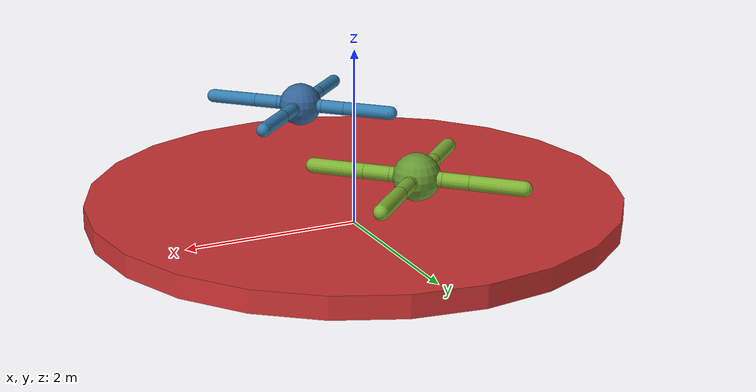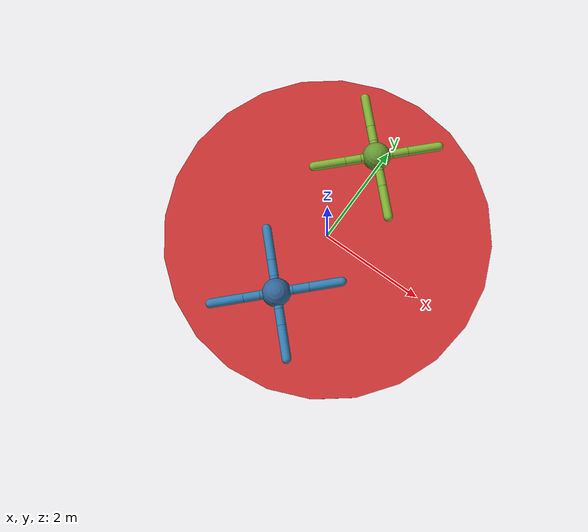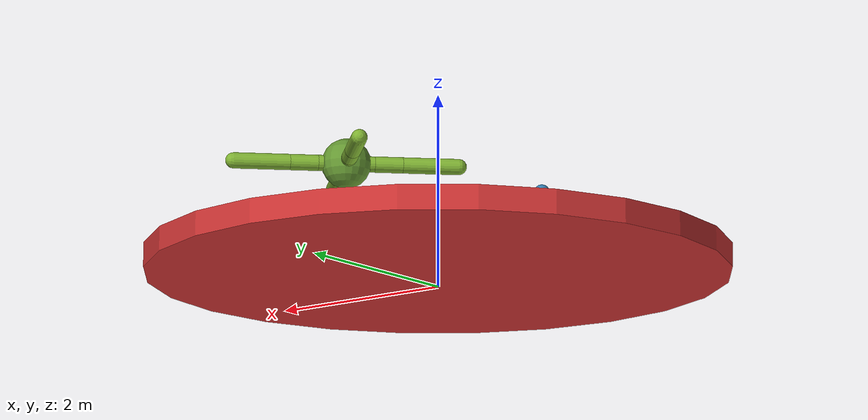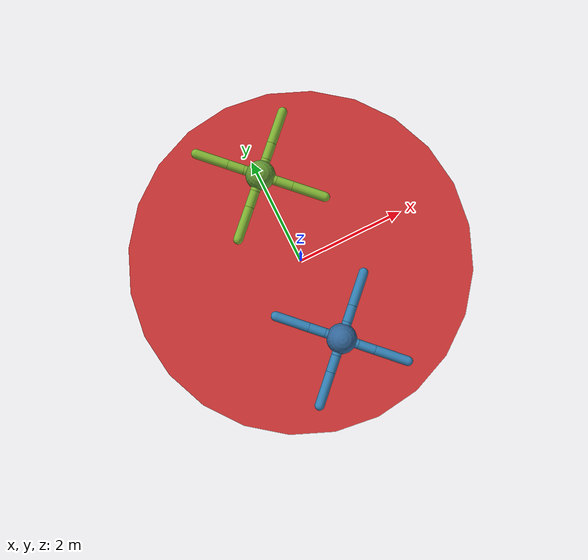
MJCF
<mujoco model="sumos">
  <compiler angle="degree" coordinate="local" inertiafromgeom="true"/>
  <option integrator="RK4" timestep="0.01"/>
  <custom>
    <numeric data="0.0 0.0 0.55 1.0 0.0 0.0 0.0 0.0 1.0 0.0 -1.0 0.0 -1.0 0.0 1.0" name="init_qpos"/>
  </custom>
  <default>
    <joint armature="1" damping="1" limited="true"/>
    <geom conaffinity="10" contype="01" condim="3" density="5.0" friction="1.5 0.1 0.1" margin="0.01" rgba="0.8 0.6 0.4 1"/>
  </default>
  <worldbody>
    <body name="tatami" pos="0 0 0.125">
      <geom name="tatami_geom" conaffinity="11" contype="01" pos="0 0 0" size="3.0" fromto="0.0 0.0 0.0 0.0 0.0 0.25" type="cylinder" rgba=".8 .2 .2 1"/>
      <!--joint armature="0" damping="0" limited="false" margin="0.01" name="root" pos="0 0 0" type="free"/-->
    </body>
  </worldbody>
  <worldbody>
    <body name="ant0" pos="0 -1.5 1.0">
      <geom name="ant0_torso_geom" pos="0 0 0" size="0.25" type="sphere" rgba=".2 .4 .6 1"/>
      <!--joint armature="0" damping="0" limited="false" margin="0.01" name="root" pos="0 0 0" type="free"/-->
      <body name="ant0_front_left_leg" pos="0 0 0">
        <geom fromto="0.0 0.0 0.0 0.2 0.2 0.0" name="ant0_aux_1_geom" size="0.08" type="capsule" rgba=".2 .5 .7 1"/>
        <body name="ant0_aux_1" pos="0.2 0.2 0">
          <joint axis="0 0 1" name="ant0_hip_1" pos="0.0 0.0 0.0" range="-40 40" type="hinge"/>
          <geom fromto="0.0 0.0 0.0 0.2 0.2 0.0" name="ant0_left_leg_geom" size="0.08" type="capsule" rgba=".2 .5 .7 1"/>
          <body pos="0.2 0.2 0" name="ant0_front_left_foot">
            <joint axis="-1 1 0" name="ant0_ankle_1" pos="0.0 0.0 0.0" range="30 100" type="hinge"/>
            <geom fromto="0.0 0.0 0.0 0.4 0.4 0.0" name="ant0_left_ankle_geom" size="0.08" type="capsule" rgba=".2 .5 .7 1"/>
          </body>
        </body>
      </body>
      <body name="ant0_front_right_leg" pos="0 0 0">
        <geom fromto="0.0 0.0 0.0 -0.2 0.2 0.0" name="ant0_aux_2_geom" size="0.08" type="capsule" rgba=".2 .5 .7 1"/>
        <body name="ant0_aux_2" pos="-0.2 0.2 0">
          <joint axis="0 0 1" name="ant0_hip_2" pos="0.0 0.0 0.0" range="-40 40" type="hinge"/>
          <geom fromto="0.0 0.0 0.0 -0.2 0.2 0.0" name="ant0_right_leg_geom" size="0.08" type="capsule" rgba=".2 .5 .7 1"/>
          <body pos="-0.2 0.2 0" name="ant0_front_right_foot">
            <joint axis="1 1 0" name="ant0_ankle_2" pos="0.0 0.0 0.0" range="-100 -30" type="hinge"/>
            <geom fromto="0.0 0.0 0.0 -0.4 0.4 0.0" name="ant0_right_ankle_geom" size="0.08" type="capsule" rgba=".2 .5 .7 1"/>
          </body>
        </body>
      </body>
      <body name="ant0_left_back_leg" pos="0 0 0">
        <geom fromto="0.0 0.0 0.0 -0.2 -0.2 0.0" name="ant0_aux_3_geom" size="0.08" type="capsule" rgba=".2 .5 .7 1"/>
        <body name="ant0_aux_3" pos="-0.2 -0.2 0">
          <joint axis="0 0 1" name="ant0_hip_3" pos="0.0 0.0 0.0" range="-40 40" type="hinge"/>
          <geom fromto="0.0 0.0 0.0 -0.2 -0.2 0.0" name="ant0_back_leg_geom" size="0.08" type="capsule" rgba=".2 .5 .7 1"/>
          <body pos="-0.2 -0.2 0" name="ant0_left_back_foot">
            <joint axis="-1 1 0" name="ant0_ankle_3" pos="0.0 0.0 0.0" range="-100 -30" type="hinge"/>
            <geom fromto="0.0 0.0 0.0 -0.4 -0.4 0.0" name="ant0_third_ankle_geom" size="0.08" type="capsule" rgba=".2 .5 .7 1"/>
          </body>
        </body>
      </body>
      <body name="ant0_right_back_leg" pos="0 0 0">
        <geom fromto="0.0 0.0 0.0 0.2 -0.2 0.0" name="ant0_aux_4_geom" size="0.08" type="capsule" rgba=".2 .5 .7 1"/>
        <body name="ant0_aux_4" pos="0.2 -0.2 0">
          <joint axis="0 0 1" name="ant0_hip_4" pos="0.0 0.0 0.0" range="-40 40" type="hinge"/>
          <geom fromto="0.0 0.0 0.0 0.2 -0.2 0.0" name="ant0_rightback_leg_geom" size="0.08" type="capsule" rgba=".2 .5 .7 1"/>
          <body pos="0.2 -0.2 0" name="ant0_right_back_foot">
            <joint axis="1 1 0" name="ant0_ankle_4" pos="0.0 0.0 0.0" range="30 100" type="hinge"/>
            <geom fromto="0.0 0.0 0.0 0.4 -0.4 0.0" name="ant0_fourth_ankle_geom" size="0.08" type="capsule" rgba=".2 .5 .7 1"/>
          </body>
        </body>
      </body>
    </body>
  </worldbody>
  <worldbody>
    <body name="ant1" pos="0 1.5 1.0">
      <geom name="ant1_torso_geom" conaffinity="01" contype="10" pos="0 0 0" size="0.25" type="sphere"  rgba=".4 .6 .2 1"/>
      <!--joint armature="0" damping="0" limited="false" margin="0.01" name="root_ant1" pos="0 0 0" type="free"/-->
      <body name="ant1_front_left_leg" pos="0 0 0">
        <geom fromto="0.0 0.0 0.0 0.2 0.2 0.0" name="ant1_aux_1_geom" conaffinity="01" contype="10" size="0.08" type="capsule" rgba=".5 .7 .2 1"/>
        <body name="ant1_aux_1" pos="0.2 0.2 0">
          <joint axis="0 0 1" name="ant1_hip_1" pos="0.0 0.0 0.0" range="-40 40" type="hinge"/>
          <geom fromto="0.0 0.0 0.0 0.2 0.2 0.0" name="ant1_left_leg_geom" conaffinity="01" contype="10" size="0.08" type="capsule" rgba=".5 .7 .2 1"/>
          <body pos="0.2 0.2 0" name="ant1_front_left_foot">
            <joint axis="-1 1 0" name="ant1_ankle_1" pos="0.0 0.0 0.0" range="30 100" type="hinge"/>
            <geom fromto="0.0 0.0 0.0 0.4 0.4 0.0" name="ant1_left_ankle_geom" conaffinity="01" contype="10" size="0.08" type="capsule" rgba=".5 .7 .2 1"/>
          </body>
        </body>
      </body>
      <body name="ant1_front_right_leg" pos="0 0 0">
        <geom fromto="0.0 0.0 0.0 -0.2 0.2 0.0" name="ant1_aux_2_geom" conaffinity="01" contype="10" size="0.08" type="capsule" rgba=".5 .7 .2 1"/>
        <body name="ant1_aux_2" pos="-0.2 0.2 0">
          <joint axis="0 0 1" name="ant1_hip_2" pos="0.0 0.0 0.0" range="-40 40" type="hinge"/>
          <geom fromto="0.0 0.0 0.0 -0.2 0.2 0.0" name="ant1_right_leg_geom" conaffinity="01" contype="10" size="0.08" type="capsule" rgba=".5 .7 .2 1"/>
          <body pos="-0.2 0.2 0" name="ant1_front_right_foot">
            <joint axis="1 1 0" name="ant1_ankle_2" pos="0.0 0.0 0.0" range="-100 -30" type="hinge"/>
            <geom fromto="0.0 0.0 0.0 -0.4 0.4 0.0" name="ant1_right_ankle_geom" conaffinity="01" contype="10" size="0.08" type="capsule" rgba=".5 .7 .2 1"/>
          </body>
        </body>
      </body>
      <body name="ant1_left_back_leg" pos="0 0 0">
        <geom fromto="0.0 0.0 0.0 -0.2 -0.2 0.0" name="ant1_aux_3_geom" conaffinity="01" contype="10" size="0.08" type="capsule" rgba=".5 .7 .2 1"/>
        <body name="ant1_aux_3" pos="-0.2 -0.2 0">
          <joint axis="0 0 1" name="ant1_hip_3" pos="0.0 0.0 0.0" range="-40 40" type="hinge"/>
          <geom fromto="0.0 0.0 0.0 -0.2 -0.2 0.0" name="ant1_back_leg_geom" conaffinity="01" contype="10" size="0.08" type="capsule" rgba=".5 .7 .2 1"/>
          <body pos="-0.2 -0.2 0" name="ant1_left_back_foot">
            <joint axis="-1 1 0" name="ant1_ankle_3" pos="0.0 0.0 0.0" range="-100 -30" type="hinge"/>
            <geom fromto="0.0 0.0 0.0 -0.4 -0.4 0.0" name="ant1_third_ankle_geom" conaffinity="01" contype="10" size="0.08" type="capsule" rgba=".5 .7 .2 1"/>
          </body>
        </body>
      </body>
      <body name="ant1_right_back_leg" pos="0 0 0">
        <geom fromto="0.0 0.0 0.0 0.2 -0.2 0.0" name="ant1_aux_4_geom" conaffinity="01" contype="10" size="0.08" type="capsule" rgba=".5 .7 .2 1"/>
        <body name="ant1_aux_4" pos="0.2 -0.2 0">
          <joint axis="0 0 1" name="ant1_hip_4" pos="0.0 0.0 0.0" range="-40 40" type="hinge"/>
          <geom fromto="0.0 0.0 0.0 0.2 -0.2 0.0" name="ant1_rightback_leg_geom" conaffinity="01" contype="10" size="0.08" type="capsule" rgba=".5 .7 .2 1"/>
          <body pos="0.2 -0.2 0" name="ant1_right_back_foot">
            <joint axis="1 1 0" name="ant1_ankle_4" pos="0.0 0.0 0.0" range="30 100" type="hinge"/>
            <geom fromto="0.0 0.0 0.0 0.4 -0.4 0.0" name="ant1_fourth_ankle_geom" conaffinity="01" contype="10" size="0.08" type="capsule" rgba=".5 .7 .2 1"/>
          </body>
        </body>
      </body>
    </body>
  </worldbody>
  <actuator>
    <motor ctrllimited="true" ctrlrange="-1.0 1.0" joint="ant0_hip_4" gear="150"/>
    <motor ctrllimited="true" ctrlrange="-1.0 1.0" joint="ant0_ankle_4" gear="150"/>
    <motor ctrllimited="true" ctrlrange="-1.0 1.0" joint="ant0_hip_1" gear="150"/>
    <motor ctrllimited="true" ctrlrange="-1.0 1.0" joint="ant0_ankle_1" gear="150"/>
    <motor ctrllimited="true" ctrlrange="-1.0 1.0" joint="ant0_hip_2" gear="150"/>
    <motor ctrllimited="true" ctrlrange="-1.0 1.0" joint="ant0_ankle_2" gear="150"/>
    <motor ctrllimited="true" ctrlrange="-1.0 1.0" joint="ant0_hip_3" gear="150"/>
    <motor ctrllimited="true" ctrlrange="-1.0 1.0" joint="ant0_ankle_3" gear="150"/>
    <motor ctrllimited="true" ctrlrange="-1.0 1.0" joint="ant1_hip_4" gear="150"/>
    <motor ctrllimited="true" ctrlrange="-1.0 1.0" joint="ant1_ankle_4" gear="150"/>
    <motor ctrllimited="true" ctrlrange="-1.0 1.0" joint="ant1_hip_1" gear="150"/>
    <motor ctrllimited="true" ctrlrange="-1.0 1.0" joint="ant1_ankle_1" gear="150"/>
    <motor ctrllimited="true" ctrlrange="-1.0 1.0" joint="ant1_hip_2" gear="150"/>
    <motor ctrllimited="true" ctrlrange="-1.0 1.0" joint="ant1_ankle_2" gear="150"/>
    <motor ctrllimited="true" ctrlrange="-1.0 1.0" joint="ant1_hip_3" gear="150"/>
    <motor ctrllimited="true" ctrlrange="-1.0 1.0" joint="ant1_ankle_3" gear="150"/>
  </actuator>
</mujoco>
